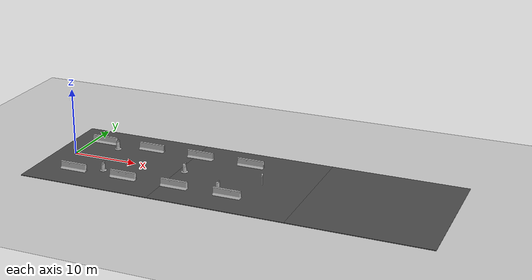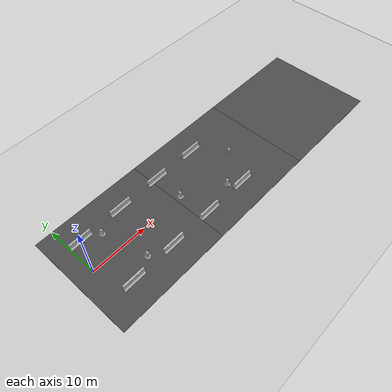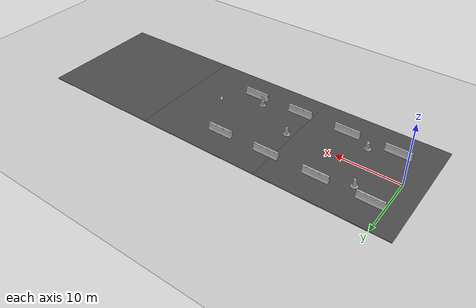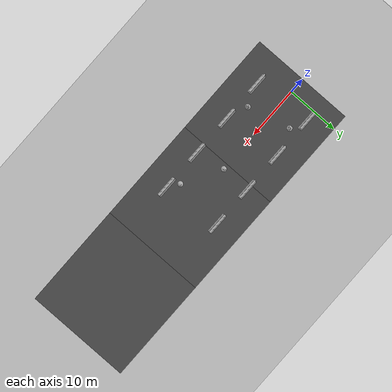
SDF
<sdf version="1.7">
 <world name="default">
  <light name="sun" type="directional">
   <pose>0 0 10 0 -0 0</pose>
   <diffuse>0.8 0.8 0.8 1</diffuse>
   <specular>0.2 0.2 0.2 1</specular>
   <attenuation>
    <range>1000</range>
    <constant>0.9</constant>
    <linear>0.01</linear>
    <quadratic>0.001</quadratic>
   </attenuation>
   <direction>-0.5 0.1 -0.9</direction>
   <spot><inner_angle>0</inner_angle><outer_angle>0</outer_angle><falloff>0</falloff></spot>
  </light>
  <model name="ground_plane">
   <static>1</static>
   <link name="link">
    <collision name="collision">
     <geometry><plane><normal>0 0 1</normal><size>100 100</size></plane></geometry>
     <surface>
      <contact><collide_bitmask>65535</collide_bitmask></contact>
      <friction><ode><mu>100</mu><mu2>50</mu2></ode></friction>
     </surface>
    </collision>
    <visual name="visual">
     <cast_shadows>0</cast_shadows>
     <geometry><plane><normal>0 0 1</normal><size>100 100</size></plane></geometry>
     <material>
      <script><uri>file://media/materials/scripts/gazebo.material</uri><name>Gazebo/Grey</name></script>
     </material>
    </visual>
   </link>
  </model>
  <gravity>0 0 -9.8</gravity>
  <magnetic_field>6e-06 2.3e-05 -4.2e-05</magnetic_field>
  <atmosphere type="adiabatic"/>
  <physics type="ode">
   <max_step_size>0.001</max_step_size>
   <real_time_factor>1</real_time_factor>
   <real_time_update_rate>1000</real_time_update_rate>
  </physics>
  <scene><ambient>0.4 0.4 0.4 1</ambient><background>0.7 0.7 0.7 1</background><shadows>1</shadows></scene>
  <spherical_coordinates>
   <surface_model>EARTH_WGS84</surface_model>
   <latitude_deg>0</latitude_deg>
   <longitude_deg>0</longitude_deg>
   <elevation>0</elevation>
   <heading_deg>0</heading_deg>
  </spherical_coordinates>
  <model name="Construction Barrel">
   <link name="link">
    <inertial>
     <pose>0 0 0.4 0 -0 0</pose>
     <mass>500</mass>
     <inertia><ixx>51.2096</ixx><iyy>51.2096</iyy><izz>25</izz><ixy>0</ixy><ixz>0</ixz><iyz>0</iyz></inertia>
    </inertial>
    <collision name="collision">
     <geometry><mesh><uri>model://construction_barrel/meshes/construction_barrel.dae</uri></mesh></geometry>
    </collision>
    <visual name="visual">
     <geometry><mesh><uri>model://construction_barrel/meshes/construction_barrel.dae</uri></mesh></geometry>
    </visual>
   </link>
   <pose>5.00002 4.00002 0.049999 -1e-06 -3e-06 0.000311</pose>
  </model>
  <model name="Construction Barrel_3">
   <link name="link">
    <inertial>
     <pose>0 0 0.4 0 -0 0</pose>
     <mass>500</mass>
     <inertia><ixx>51.2096</ixx><iyy>51.2096</iyy><izz>25</izz><ixy>0</ixy><ixz>0</ixz><iyz>0</iyz></inertia>
    </inertial>
    <collision name="collision">
     <geometry><mesh><uri>model://construction_barrel/meshes/construction_barrel.dae</uri></mesh></geometry>
    </collision>
    <visual name="visual">
     <geometry><mesh><uri>model://construction_barrel/meshes/construction_barrel.dae</uri></mesh></geometry>
    </visual>
   </link>
   <pose>18 1.1e-05 0.049999 3e-06 -0 -0.000187</pose>
  </model>
  <model name="asphalt_plane_0">
   <static>1</static>
   <link name="link">
    <collision name="collision"><geometry><box><size>20 20 0.1</size></box></geometry></collision>
    <visual name="visual">
     <cast_shadows>0</cast_shadows>
     <geometry><box><size>20 20 0.1</size></box></geometry>
     <material>
      <script>
       <uri>model://asphalt_plane/materials/scripts</uri>
       <uri>model://asphalt_plane/materials/textures</uri>
       <name>vrc/asphalt</name>
      </script>
     </material>
    </visual>
   </link>
   <pose>27 0 0 0 -0 0</pose>
  </model>
  <model name="asphalt_plane_1">
   <static>1</static>
   <link name="link">
    <collision name="collision"><geometry><box><size>20 20 0.1</size></box></geometry></collision>
    <visual name="visual">
     <cast_shadows>0</cast_shadows>
     <geometry><box><size>20 20 0.1</size></box></geometry>
     <material>
      <script>
       <uri>model://asphalt_plane/materials/scripts</uri>
       <uri>model://asphalt_plane/materials/textures</uri>
       <name>vrc/asphalt</name>
      </script>
     </material>
    </visual>
   </link>
   <pose>47 0 0 0 -0 0</pose>
  </model>
  <model name="Stop Sign">
   <static>1</static>
   <link name="link">
    <collision name="collision">
     <geometry><mesh><uri>model://stop_sign/meshes/stop_sign.dae</uri></mesh></geometry>
    </collision>
    <visual name="visual">
     <geometry><mesh><uri>model://stop_sign/meshes/stop_sign.dae</uri></mesh></geometry>
     <material>
      <script>
       <uri>model://stop_sign/materials/scripts</uri>
       <uri>model://stop_sign/materials/textures</uri>
       <name>StopSign/Diffuse</name>
      </script>
     </material>
    </visual>
   </link>
   <pose>30 0 0 0 0 -1.58319</pose>
  </model>
  <model name="jersey_barrier">
   <static>1</static>
   <link name="link">
    <visual name="visual">
     <geometry><mesh><uri>model://jersey_barrier/meshes/jersey_barrier.dae</uri></mesh></geometry>
    </visual>
    <collision name="upright">
     <pose>0 0 0.5715 0 -0 0</pose>
     <geometry><box><size>4.06542 0.3063 1.143</size></box></geometry>
    </collision>
    <collision name="base">
     <pose>0 0 0.032258 0 -0 0</pose>
     <geometry><box><size>4.06542 0.8107 0.064516</size></box></geometry>
    </collision>
    <collision name="base2">
     <pose>0 0 0.1 0 -0 0</pose>
     <geometry><box><size>4.06542 0.65 0.1</size></box></geometry>
    </collision>
    <collision name="base3">
     <pose>0 0 0.2 0 -0 0</pose>
     <geometry><box><size>4.06542 0.5 0.1</size></box></geometry>
    </collision>
    <collision name="left-angle">
     <pose>0 -0.224 0.2401 0.9 -0 0</pose>
     <geometry><box><size>4.06542 0.5 0.064516</size></box></geometry>
    </collision>
    <collision name="right-angle">
     <pose>0 0.224 0.2401 -0.9 0 0</pose>
     <geometry><box><size>4.06542 0.5 0.064516</size></box></geometry>
    </collision>
   </link>
   <pose>11 -5.45 0 0 -0 0</pose>
  </model>
  <model name="jersey_barrier_0">
   <static>1</static>
   <link name="link">
    <visual name="visual">
     <geometry><mesh><uri>model://jersey_barrier/meshes/jersey_barrier.dae</uri></mesh></geometry>
    </visual>
    <collision name="upright">
     <pose>0 0 0.5715 0 -0 0</pose>
     <geometry><box><size>4.06542 0.3063 1.143</size></box></geometry>
    </collision>
    <collision name="base">
     <pose>0 0 0.032258 0 -0 0</pose>
     <geometry><box><size>4.06542 0.8107 0.064516</size></box></geometry>
    </collision>
    <collision name="base2">
     <pose>0 0 0.1 0 -0 0</pose>
     <geometry><box><size>4.06542 0.65 0.1</size></box></geometry>
    </collision>
    <collision name="base3">
     <pose>0 0 0.2 0 -0 0</pose>
     <geometry><box><size>4.06542 0.5 0.1</size></box></geometry>
    </collision>
    <collision name="left-angle">
     <pose>0 -0.224 0.2401 0.9 -0 0</pose>
     <geometry><box><size>4.06542 0.5 0.064516</size></box></geometry>
    </collision>
    <collision name="right-angle">
     <pose>0 0.224 0.2401 -0.9 0 0</pose>
     <geometry><box><size>4.06542 0.5 0.064516</size></box></geometry>
    </collision>
   </link>
   <pose>19 -5.45 0 0 -0 0</pose>
  </model>
  <model name="jersey_barrier_1">
   <static>1</static>
   <link name="link">
    <visual name="visual">
     <geometry><mesh><uri>model://jersey_barrier/meshes/jersey_barrier.dae</uri></mesh></geometry>
    </visual>
    <collision name="upright">
     <pose>0 0 0.5715 0 -0 0</pose>
     <geometry><box><size>4.06542 0.3063 1.143</size></box></geometry>
    </collision>
    <collision name="base">
     <pose>0 0 0.032258 0 -0 0</pose>
     <geometry><box><size>4.06542 0.8107 0.064516</size></box></geometry>
    </collision>
    <collision name="base2">
     <pose>0 0 0.1 0 -0 0</pose>
     <geometry><box><size>4.06542 0.65 0.1</size></box></geometry>
    </collision>
    <collision name="base3">
     <pose>0 0 0.2 0 -0 0</pose>
     <geometry><box><size>4.06542 0.5 0.1</size></box></geometry>
    </collision>
    <collision name="left-angle">
     <pose>0 -0.224 0.2401 0.9 -0 0</pose>
     <geometry><box><size>4.06542 0.5 0.064516</size></box></geometry>
    </collision>
    <collision name="right-angle">
     <pose>0 0.224 0.2401 -0.9 0 0</pose>
     <geometry><box><size>4.06542 0.5 0.064516</size></box></geometry>
    </collision>
   </link>
   <pose>27 -5.45 0 0 -0 0</pose>
  </model>
  <model name="jersey_barrier_2">
   <static>1</static>
   <link name="link">
    <visual name="visual">
     <geometry><mesh><uri>model://jersey_barrier/meshes/jersey_barrier.dae</uri></mesh></geometry>
    </visual>
    <collision name="upright">
     <pose>0 0 0.5715 0 -0 0</pose>
     <geometry><box><size>4.06542 0.3063 1.143</size></box></geometry>
    </collision>
    <collision name="base">
     <pose>0 0 0.032258 0 -0 0</pose>
     <geometry><box><size>4.06542 0.8107 0.064516</size></box></geometry>
    </collision>
    <collision name="base2">
     <pose>0 0 0.1 0 -0 0</pose>
     <geometry><box><size>4.06542 0.65 0.1</size></box></geometry>
    </collision>
    <collision name="base3">
     <pose>0 0 0.2 0 -0 0</pose>
     <geometry><box><size>4.06542 0.5 0.1</size></box></geometry>
    </collision>
    <collision name="left-angle">
     <pose>0 -0.224 0.2401 0.9 -0 0</pose>
     <geometry><box><size>4.06542 0.5 0.064516</size></box></geometry>
    </collision>
    <collision name="right-angle">
     <pose>0 0.224 0.2401 -0.9 0 0</pose>
     <geometry><box><size>4.06542 0.5 0.064516</size></box></geometry>
    </collision>
   </link>
   <pose>10 5.45 0 0 -0 0</pose>
  </model>
  <model name="jersey_barrier_3">
   <static>1</static>
   <link name="link">
    <visual name="visual">
     <geometry><mesh><uri>model://jersey_barrier/meshes/jersey_barrier.dae</uri></mesh></geometry>
    </visual>
    <collision name="upright">
     <pose>0 0 0.5715 0 -0 0</pose>
     <geometry><box><size>4.06542 0.3063 1.143</size></box></geometry>
    </collision>
    <collision name="base">
     <pose>0 0 0.032258 0 -0 0</pose>
     <geometry><box><size>4.06542 0.8107 0.064516</size></box></geometry>
    </collision>
    <collision name="base2">
     <pose>0 0 0.1 0 -0 0</pose>
     <geometry><box><size>4.06542 0.65 0.1</size></box></geometry>
    </collision>
    <collision name="base3">
     <pose>0 0 0.2 0 -0 0</pose>
     <geometry><box><size>4.06542 0.5 0.1</size></box></geometry>
    </collision>
    <collision name="left-angle">
     <pose>0 -0.224 0.2401 0.9 -0 0</pose>
     <geometry><box><size>4.06542 0.5 0.064516</size></box></geometry>
    </collision>
    <collision name="right-angle">
     <pose>0 0.224 0.2401 -0.9 0 0</pose>
     <geometry><box><size>4.06542 0.5 0.064516</size></box></geometry>
    </collision>
   </link>
   <pose>18 5.45 0 0 -0 0</pose>
  </model>
  <model name="jersey_barrier_4">
   <static>1</static>
   <link name="link">
    <visual name="visual">
     <geometry><mesh><uri>model://jersey_barrier/meshes/jersey_barrier.dae</uri></mesh></geometry>
    </visual>
    <collision name="upright">
     <pose>0 0 0.5715 0 -0 0</pose>
     <geometry><box><size>4.06542 0.3063 1.143</size></box></geometry>
    </collision>
    <collision name="base">
     <pose>0 0 0.032258 0 -0 0</pose>
     <geometry><box><size>4.06542 0.8107 0.064516</size></box></geometry>
    </collision>
    <collision name="base2">
     <pose>0 0 0.1 0 -0 0</pose>
     <geometry><box><size>4.06542 0.65 0.1</size></box></geometry>
    </collision>
    <collision name="base3">
     <pose>0 0 0.2 0 -0 0</pose>
     <geometry><box><size>4.06542 0.5 0.1</size></box></geometry>
    </collision>
    <collision name="left-angle">
     <pose>0 -0.224 0.2401 0.9 -0 0</pose>
     <geometry><box><size>4.06542 0.5 0.064516</size></box></geometry>
    </collision>
    <collision name="right-angle">
     <pose>0 0.224 0.2401 -0.9 0 0</pose>
     <geometry><box><size>4.06542 0.5 0.064516</size></box></geometry>
    </collision>
   </link>
   <pose>26 5.45 0 0 -0 0</pose>
  </model>
  <model name="jersey_barrier_5">
   <static>1</static>
   <link name="link">
    <visual name="visual">
     <geometry><mesh><uri>model://jersey_barrier/meshes/jersey_barrier.dae</uri></mesh></geometry>
    </visual>
    <collision name="upright">
     <pose>0 0 0.5715 0 -0 0</pose>
     <geometry><box><size>4.06542 0.3063 1.143</size></box></geometry>
    </collision>
    <collision name="base">
     <pose>0 0 0.032258 0 -0 0</pose>
     <geometry><box><size>4.06542 0.8107 0.064516</size></box></geometry>
    </collision>
    <collision name="base2">
     <pose>0 0 0.1 0 -0 0</pose>
     <geometry><box><size>4.06542 0.65 0.1</size></box></geometry>
    </collision>
    <collision name="base3">
     <pose>0 0 0.2 0 -0 0</pose>
     <geometry><box><size>4.06542 0.5 0.1</size></box></geometry>
    </collision>
    <collision name="left-angle">
     <pose>0 -0.224 0.2401 0.9 -0 0</pose>
     <geometry><box><size>4.06542 0.5 0.064516</size></box></geometry>
    </collision>
    <collision name="right-angle">
     <pose>0 0.224 0.2401 -0.9 0 0</pose>
     <geometry><box><size>4.06542 0.5 0.064516</size></box></geometry>
    </collision>
   </link>
   <pose>3 -5.45 0 0 -0 0</pose>
  </model>
  <model name="jersey_barrier_6">
   <static>1</static>
   <link name="link">
    <visual name="visual">
     <geometry><mesh><uri>model://jersey_barrier/meshes/jersey_barrier.dae</uri></mesh></geometry>
    </visual>
    <collision name="upright">
     <pose>0 0 0.5715 0 -0 0</pose>
     <geometry><box><size>4.06542 0.3063 1.143</size></box></geometry>
    </collision>
    <collision name="base">
     <pose>0 0 0.032258 0 -0 0</pose>
     <geometry><box><size>4.06542 0.8107 0.064516</size></box></geometry>
    </collision>
    <collision name="base2">
     <pose>0 0 0.1 0 -0 0</pose>
     <geometry><box><size>4.06542 0.65 0.1</size></box></geometry>
    </collision>
    <collision name="base3">
     <pose>0 0 0.2 0 -0 0</pose>
     <geometry><box><size>4.06542 0.5 0.1</size></box></geometry>
    </collision>
    <collision name="left-angle">
     <pose>0 -0.224 0.2401 0.9 -0 0</pose>
     <geometry><box><size>4.06542 0.5 0.064516</size></box></geometry>
    </collision>
    <collision name="right-angle">
     <pose>0 0.224 0.2401 -0.9 0 0</pose>
     <geometry><box><size>4.06542 0.5 0.064516</size></box></geometry>
    </collision>
   </link>
   <pose>2 5.45 0 0 -0 0</pose>
  </model>
  <model name="asphalt_plane">
   <static>1</static>
   <link name="link">
    <collision name="collision"><geometry><box><size>20 20 0.1</size></box></geometry></collision>
    <visual name="visual">
     <cast_shadows>0</cast_shadows>
     <geometry><box><size>20 20 0.1</size></box></geometry>
     <material>
      <script>
       <uri>model://asphalt_plane/materials/scripts</uri>
       <uri>model://asphalt_plane/materials/textures</uri>
       <name>vrc/asphalt</name>
      </script>
     </material>
    </visual>
   </link>
   <pose>7 0 0 0 -0 0</pose>
  </model>
  <model name="Construction Barrel_0">
   <link name="link">
    <inertial>
     <pose>0 0 0.4 0 -0 0</pose>
     <mass>500</mass>
     <inertia><ixx>51.2096</ixx><iyy>51.2096</iyy><izz>25</izz><ixy>0</ixy><ixz>0</ixz><iyz>0</iyz></inertia>
    </inertial>
    <collision name="collision">
     <geometry><mesh><uri>model://construction_barrel/meshes/construction_barrel.dae</uri></mesh></geometry>
    </collision>
    <visual name="visual">
     <geometry><mesh><uri>model://construction_barrel/meshes/construction_barrel.dae</uri></mesh></geometry>
    </visual>
   </link>
   <pose>7.00002 -4 0.049999 -1e-06 -2e-06 5.8e-05</pose>
  </model>
  <model name="Construction Barrel_1">
   <link name="link">
    <inertial>
     <pose>0 0 0.4 0 -0 0</pose>
     <mass>500</mass>
     <inertia><ixx>51.2096</ixx><iyy>51.2096</iyy><izz>25</izz><ixy>0</ixy><ixz>0</ixz><iyz>0</iyz></inertia>
    </inertial>
    <collision name="collision">
     <geometry><mesh><uri>model://construction_barrel/meshes/construction_barrel.dae</uri></mesh></geometry>
    </collision>
    <visual name="visual">
     <geometry><mesh><uri>model://construction_barrel/meshes/construction_barrel.dae</uri></mesh></geometry>
    </visual>
   </link>
   <pose>25 -4 0.049999 4e-06 0 3e-06</pose>
  </model>
 </world>
</sdf>
